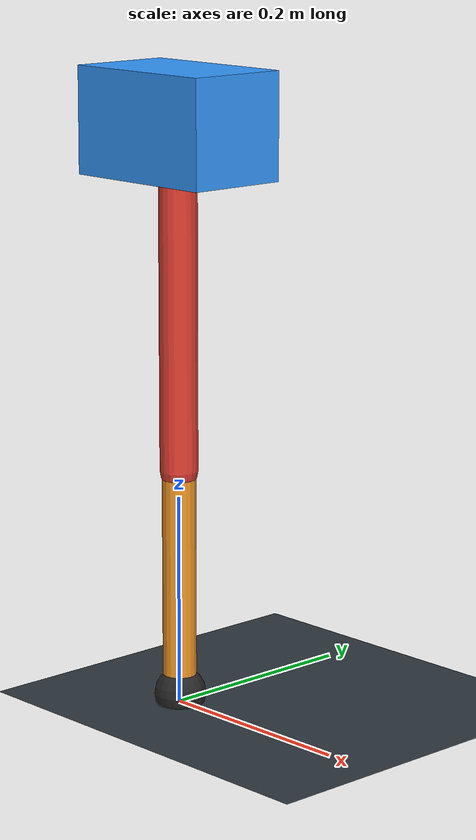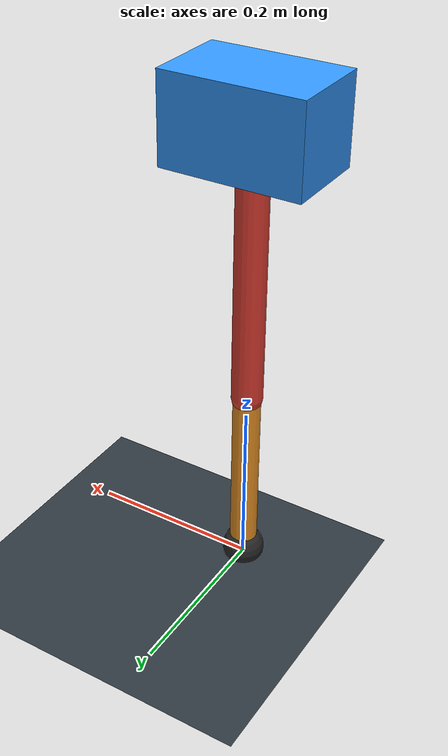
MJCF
<mujoco model="single_axis_two_bar">
  <compiler angle="radian" inertiafromgeom="true"/>
  <option timestep="0.001" integrator="implicitfast" gravity="0 0 -9.81"/>
  <default>
    <joint damping="0.08"/>
    <geom friction="1.2 0.01 0.0001" condim="3"/>
  </default>
  <worldbody>
    <geom name="floor" type="plane" size="5 5 0.1" rgba="0.18 0.22 0.25 1"/>
    <body name="carriage" pos="0 0 0.5504259745403376">
      <joint name="pole_slide" type="slide" axis="0 0 1"/>
      <geom name="payload" type="box" size="0.08 0.05 0.05" mass="2.537113571794686" rgba="0.2 0.6 1 1"/>
      <body name="thigh" pos="0 0 0">
        <joint name="hip" type="hinge" axis="0 1 0"/>
        <geom name="thigh_link" type="capsule" fromto="0 0 0 0 0 -0.3246027960431207" size="0.018" mass="0.2312837814282399" rgba="0.9 0.25 0.2 1"/>
        <body name="shank" pos="0 0 -0.3246027960431207">
          <joint name="knee" type="hinge" axis="0 1 0"/>
          <geom name="shank_link" type="capsule" fromto="0 0 0 0 0 -0.21707346636959848" size="0.016" mass="0.15466771316112515" rgba="0.95 0.6 0.15 1"/>
          <geom name="foot" type="sphere" pos="0 0 -0.21707346636959848" size="0.025" mass="0.03" rgba="0.15 0.15 0.15 1"/>
          <site name="toe" pos="0 0 -0.21707346636959848" size="0.008"/>
        </body>
      </body>
    </body>
  </worldbody>
  <actuator>
    <motor name="hip_motor" joint="hip" ctrlrange="-24.572814123223797 24.572814123223797"/>
    <motor name="knee_motor" joint="knee" ctrlrange="-73.00346609190744 73.00346609190744"/>
  </actuator>
</mujoco>
